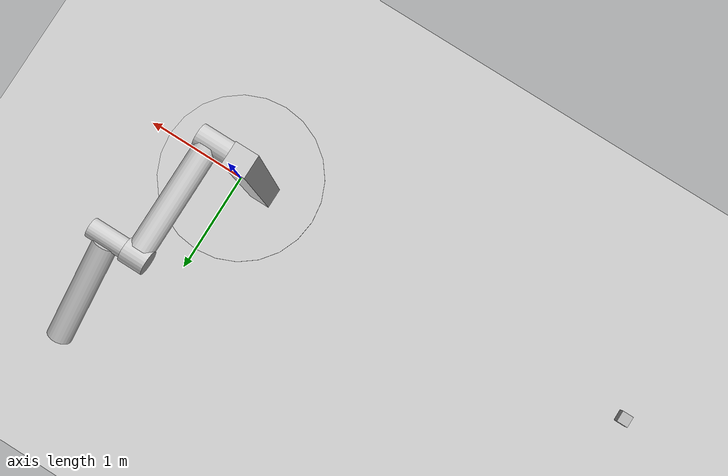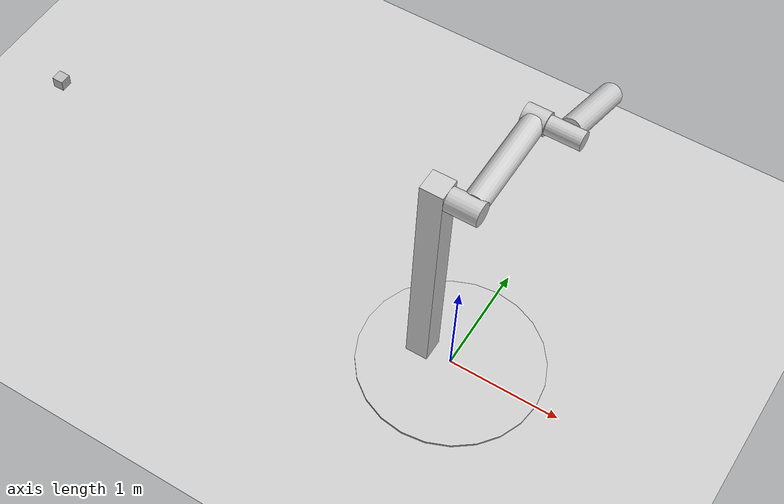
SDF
<sdf version='1.9'>
  <world name='camera_video_record_pendulum'>
    <physics name='1ms' type='ignored'>
      <max_step_size>0.001</max_step_size>
      <real_time_factor>1</real_time_factor>
      <real_time_update_rate>1000</real_time_update_rate>
    </physics>
    <plugin name='gz::sim::systems::Physics' filename='ignition-gazebo-physics-system'/>
    <plugin name='gz::sim::systems::UserCommands' filename='ignition-gazebo-user-commands-system'/>
    <plugin name='gz::sim::systems::SceneBroadcaster' filename='ignition-gazebo-scene-broadcaster-system'/>
    <plugin name='gz::sim::systems::Sensors' filename='ignition-gazebo-sensors-system'>
      <render_engine>ogre2</render_engine>
    </plugin>
    <gravity>0 0 -9.8</gravity>
    <magnetic_field>6e-06 2.3e-05 -4.2e-05</magnetic_field>
    <atmosphere type='adiabatic'/>
    <scene>
      <ambient>0.4 0.4 0.4 1</ambient>
      <background>0.7 0.7 0.7 1</background>
      <shadows>true</shadows>
    </scene>
    <model name='ground_plane'>
      <static>true</static>
      <link name='link'>
        <collision name='collision'>
          <geometry>
            <plane>
              <normal>0 0 1</normal>
              <size>100 100</size>
            </plane>
          </geometry>
          <surface>
            <friction>
              <ode/>
            </friction>
            <bounce/>
            <contact/>
          </surface>
        </collision>
        <visual name='visual'>
          <geometry>
            <plane>
              <normal>0 0 1</normal>
              <size>100 100</size>
            </plane>
          </geometry>
          <material>
            <ambient>0.8 0.8 0.8 1</ambient>
            <diffuse>0.8 0.8 0.8 1</diffuse>
            <specular>0.8 0.8 0.8 1</specular>
          </material>
        </visual>
        <pose>0 0 0 0 -0 0</pose>
        <inertial>
          <pose>0 0 0 0 -0 0</pose>
          <mass>1</mass>
          <inertia>
            <ixx>1</ixx>
            <ixy>0</ixy>
            <ixz>0</ixz>
            <iyy>1</iyy>
            <iyz>0</iyz>
            <izz>1</izz>
          </inertia>
        </inertial>
        <enable_wind>false</enable_wind>
      </link>
      <pose>0 0 0 0 -0 0</pose>
      <self_collide>false</self_collide>
    </model>
    <model name='double_pendulum_with_base'>
      <link name='base'>
        <inertial>
          <mass>100</mass>
          <pose>0 0 0 0 -0 0</pose>
          <inertia>
            <ixx>1</ixx>
            <ixy>0</ixy>
            <ixz>0</ixz>
            <iyy>1</iyy>
            <iyz>0</iyz>
            <izz>1</izz>
          </inertia>
        </inertial>
        <visual name='vis_plate_on_ground'>
          <pose>0 0 0.01 0 0 0</pose>
          <geometry>
            <cylinder>
              <radius>0.80000000000000004</radius>
              <length>0.02</length>
            </cylinder>
          </geometry>
          <material>
            <ambient>0.8 0.8 0.8 1</ambient>
            <diffuse>0.8 0.8 0.8 1</diffuse>
            <specular>0.8 0.8 0.8 1</specular>
          </material>
        </visual>
        <visual name='vis_pole'>
          <pose>-0.275 0 1.1 0 0 0</pose>
          <geometry>
            <box>
              <size>0.2 0.2 2.2</size>
            </box>
          </geometry>
          <material>
            <ambient>0.8 0.8 0.8 1</ambient>
            <diffuse>0.8 0.8 0.8 1</diffuse>
            <specular>0.8 0.8 0.8 1</specular>
          </material>
        </visual>
        <collision name='col_plate_on_ground'>
          <pose>0 0 0.01 0 0 0</pose>
          <geometry>
            <cylinder>
              <radius>0.80000000000000004</radius>
              <length>0.02</length>
            </cylinder>
          </geometry>
          <surface>
            <friction>
              <ode/>
            </friction>
            <bounce/>
            <contact/>
          </surface>
        </collision>
        <collision name='col_pole'>
          <pose>-0.275 0 1.1 0 0 0</pose>
          <geometry>
            <box>
              <size>0.2 0.2 2.2</size>
            </box>
          </geometry>
          <surface>
            <friction>
              <ode/>
            </friction>
            <bounce/>
            <contact/>
          </surface>
        </collision>
        <pose>0 0 0 0 -0 0</pose>
        <enable_wind>false</enable_wind>
      </link>
      <link name='upper_link'>
        <pose>0 -0 2.1 -1.5708 0 0</pose>
        <self_collide>false</self_collide>
        <inertial>
          <pose>0 0 0.5 0 -0 0</pose>
          <mass>1</mass>
          <inertia>
            <ixx>1</ixx>
            <ixy>0</ixy>
            <ixz>0</ixz>
            <iyy>1</iyy>
            <iyz>0</iyz>
            <izz>1</izz>
          </inertia>
        </inertial>
        <visual name='vis_upper_joint'>
          <pose>-0.05 0 0 0 1.5708 0</pose>
          <geometry>
            <cylinder>
              <radius>0.10000000000000001</radius>
              <length>0.29999999999999999</length>
            </cylinder>
          </geometry>
          <material>
            <ambient>0.8 0.8 0.8 1</ambient>
            <diffuse>0.8 0.8 0.8 1</diffuse>
            <specular>0.8 0.8 0.8 1</specular>
          </material>
        </visual>
        <visual name='vis_lower_joint'>
          <pose>0 0 1.0 0 1.5708 0</pose>
          <geometry>
            <cylinder>
              <radius>0.10000000000000001</radius>
              <length>0.20000000000000001</length>
            </cylinder>
          </geometry>
          <material>
            <ambient>0.8 0.8 0.8 1</ambient>
            <diffuse>0.8 0.8 0.8 1</diffuse>
            <specular>0.8 0.8 0.8 1</specular>
          </material>
        </visual>
        <visual name='vis_cylinder'>
          <pose>0 0 0.5 0 0 0</pose>
          <geometry>
            <cylinder>
              <radius>0.10000000000000001</radius>
              <length>0.90000000000000002</length>
            </cylinder>
          </geometry>
          <material>
            <ambient>0.8 0.8 0.8 1</ambient>
            <diffuse>0.8 0.8 0.8 1</diffuse>
            <specular>0.8 0.8 0.8 1</specular>
          </material>
        </visual>
        <collision name='col_upper_joint'>
          <pose>-0.05 0 0 0 1.5708 0</pose>
          <geometry>
            <cylinder>
              <radius>0.10000000000000001</radius>
              <length>0.29999999999999999</length>
            </cylinder>
          </geometry>
          <surface>
            <friction>
              <ode/>
            </friction>
            <bounce/>
            <contact/>
          </surface>
        </collision>
        <collision name='col_lower_joint'>
          <pose>0 0 1.0 0 1.5708 0</pose>
          <geometry>
            <cylinder>
              <radius>0.10000000000000001</radius>
              <length>0.20000000000000001</length>
            </cylinder>
          </geometry>
          <surface>
            <friction>
              <ode/>
            </friction>
            <bounce/>
            <contact/>
          </surface>
        </collision>
        <collision name='col_cylinder'>
          <pose>0 0 0.5 0 0 0</pose>
          <geometry>
            <cylinder>
              <radius>0.10000000000000001</radius>
              <length>0.90000000000000002</length>
            </cylinder>
          </geometry>
          <surface>
            <friction>
              <ode/>
            </friction>
            <bounce/>
            <contact/>
          </surface>
        </collision>
        <enable_wind>false</enable_wind>
      </link>
      <link name='lower_link'>
        <pose>0.25 1 2.1 -2 0 0</pose>
        <self_collide>false</self_collide>
        <inertial>
          <pose>0 0 0.5 0 -0 0</pose>
          <mass>1</mass>
          <inertia>
            <ixx>1</ixx>
            <ixy>0</ixy>
            <ixz>0</ixz>
            <iyy>1</iyy>
            <iyz>0</iyz>
            <izz>1</izz>
          </inertia>
        </inertial>
        <visual name='vis_lower_joint'>
          <pose>0 0 0 0 1.5708 0</pose>
          <geometry>
            <cylinder>
              <radius>0.080000000000000002</radius>
              <length>0.29999999999999999</length>
            </cylinder>
          </geometry>
          <material>
            <ambient>0.8 0.8 0.8 1</ambient>
            <diffuse>0.8 0.8 0.8 1</diffuse>
            <specular>0.8 0.8 0.8 1</specular>
          </material>
        </visual>
        <visual name='vis_cylinder'>
          <pose>0 0 0.5 0 0 0</pose>
          <geometry>
            <cylinder>
              <radius>0.10000000000000001</radius>
              <length>0.90000000000000002</length>
            </cylinder>
          </geometry>
          <material>
            <ambient>0.8 0.8 0.8 1</ambient>
            <diffuse>0.8 0.8 0.8 1</diffuse>
            <specular>0.8 0.8 0.8 1</specular>
          </material>
        </visual>
        <collision name='col_lower_joint'>
          <pose>0 0 0 0 1.5708 0</pose>
          <geometry>
            <cylinder>
              <radius>0.080000000000000002</radius>
              <length>0.29999999999999999</length>
            </cylinder>
          </geometry>
          <surface>
            <friction>
              <ode/>
            </friction>
            <bounce/>
            <contact/>
          </surface>
        </collision>
        <collision name='col_cylinder'>
          <pose>0 0 0.5 0 0 0</pose>
          <geometry>
            <cylinder>
              <radius>0.10000000000000001</radius>
              <length>0.90000000000000002</length>
            </cylinder>
          </geometry>
          <surface>
            <friction>
              <ode/>
            </friction>
            <bounce/>
            <contact/>
          </surface>
        </collision>
        <enable_wind>false</enable_wind>
      </link>
      <joint name='upper_joint' type='revolute'>
        <parent>base</parent>
        <child>upper_link</child>
        <axis>
          <xyz>1 0 0</xyz>
          <limit>
            <lower>-10000000000000000</lower>
            <upper>10000000000000000</upper>
            <effort>inf</effort>
            <velocity>inf</velocity>
            <stiffness>100000000</stiffness>
            <dissipation>1</dissipation>
          </limit>
          <dynamics>
            <spring_reference>0</spring_reference>
            <spring_stiffness>0</spring_stiffness>
            <damping>0</damping>
            <friction>0</friction>
          </dynamics>
        </axis>
        <pose>0 -0 -0 0 -0 0</pose>
      </joint>
      <joint name='lower_joint' type='revolute'>
        <parent>upper_link</parent>
        <child>lower_link</child>
        <axis>
          <xyz>1 0 0</xyz>
          <limit>
            <lower>-10000000000000000</lower>
            <upper>10000000000000000</upper>
            <effort>inf</effort>
            <velocity>inf</velocity>
            <stiffness>100000000</stiffness>
            <dissipation>1</dissipation>
          </limit>
          <dynamics>
            <spring_reference>0</spring_reference>
            <spring_stiffness>0</spring_stiffness>
            <damping>0</damping>
            <friction>0</friction>
          </dynamics>
        </axis>
        <pose>0 -0 -0 0 -0 0</pose>
      </joint>
      <pose>0 0 0 0 -0 0</pose>
      <static>false</static>
      <self_collide>false</self_collide>
    </model>
    <model name='camera'>
      <static>true</static>
      <pose>-4 0 1 0 -0 0</pose>
      <link name='link'>
        <pose>0.05 0.05 0.05 0 -0 0</pose>
        <collision name='collision'>
          <geometry>
            <box>
              <size>0.1 0.1 0.1</size>
            </box>
          </geometry>
          <surface>
            <friction>
              <ode/>
            </friction>
            <bounce/>
            <contact/>
          </surface>
        </collision>
        <visual name='visual'>
          <geometry>
            <box>
              <size>0.1 0.1 0.1</size>
            </box>
          </geometry>
        </visual>
        <sensor name='camera' type='camera'>
          <pose>0 0 0 0 -0 0</pose>
          <topic>camera</topic>
          <update_rate>30</update_rate>
          <enable_metrics>false</enable_metrics>
          <camera name='__default__'>
            <pose>0 0 0 0 -0 0</pose>
            <horizontal_fov>1.0469999999999999</horizontal_fov>
            <image>
              <width>1280</width>
              <height>800</height>
              <format>RGB_INT8</format>
              <anti_aliasing>4</anti_aliasing>
            </image>
            <camera_info_topic>__default__</camera_info_topic>
            <trigger_topic></trigger_topic>
            <triggered>false</triggered>
            <clip>
              <near>0.10000000000000001</near>
              <far>100</far>
            </clip>
            <save enabled='false'>
              <path>__default__</path>
            </save>
            <visibility_mask>4294967295</visibility_mask>
            <noise>
              <type>none</type>
              <mean>0</mean>
              <stddev>0</stddev>
            </noise>
            <distortion>
              <k1>0</k1>
              <k2>0</k2>
              <k3>0</k3>
              <p1>0</p1>
              <p2>0</p2>
              <center>0.5 0.5</center>
            </distortion>
            <lens>
              <type>stereographic</type>
              <scale_to_hfov>true</scale_to_hfov>
              <cutoff_angle>1.5708</cutoff_angle>
              <env_texture_size>256</env_texture_size>
            </lens>
            <optical_frame_id></optical_frame_id>
          </camera>
          <plugin name='gz::sim::systems::CameraVideoRecorder' filename='ignition-gazebo-camera-video-recorder-system'>
            <service>camera/record_video</service>
          </plugin>
        </sensor>
        <inertial>
          <pose>0 0 0 0 -0 0</pose>
          <mass>1</mass>
          <inertia>
            <ixx>1</ixx>
            <ixy>0</ixy>
            <ixz>0</ixz>
            <iyy>1</iyy>
            <iyz>0</iyz>
            <izz>1</izz>
          </inertia>
        </inertial>
        <enable_wind>false</enable_wind>
      </link>
      <self_collide>false</self_collide>
    </model>
    <light name='sun' type='directional'>
      <pose>0 0 10 0 -0 0</pose>
      <cast_shadows>true</cast_shadows>
      <intensity>1</intensity>
      <direction>-0.5 0.1 -0.9</direction>
      <diffuse>1 1 1 1</diffuse>
      <specular>0.5 0.5 0.5 1</specular>
      <attenuation>
        <range>10</range>
        <linear>1</linear>
        <constant>1</constant>
        <quadratic>0</quadratic>
      </attenuation>
      <spot>
        <inner_angle>0</inner_angle>
        <outer_angle>0</outer_angle>
        <falloff>0</falloff>
      </spot>
    </light>
  </world>
</sdf>
